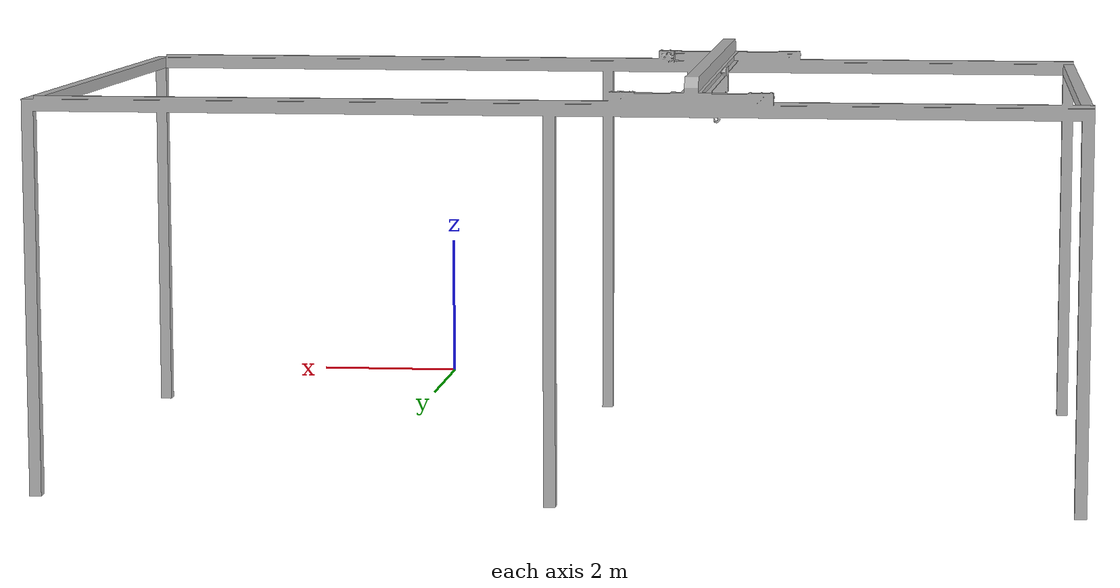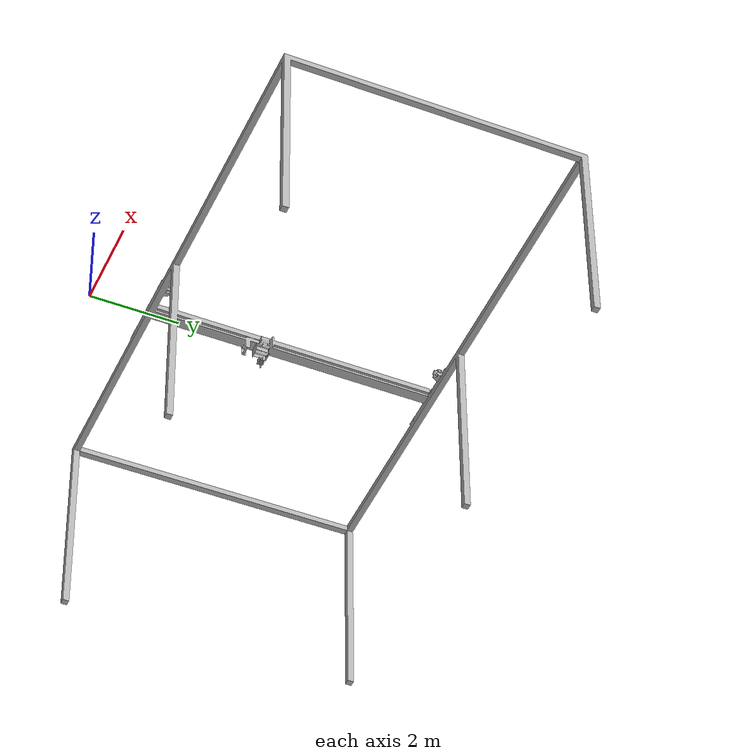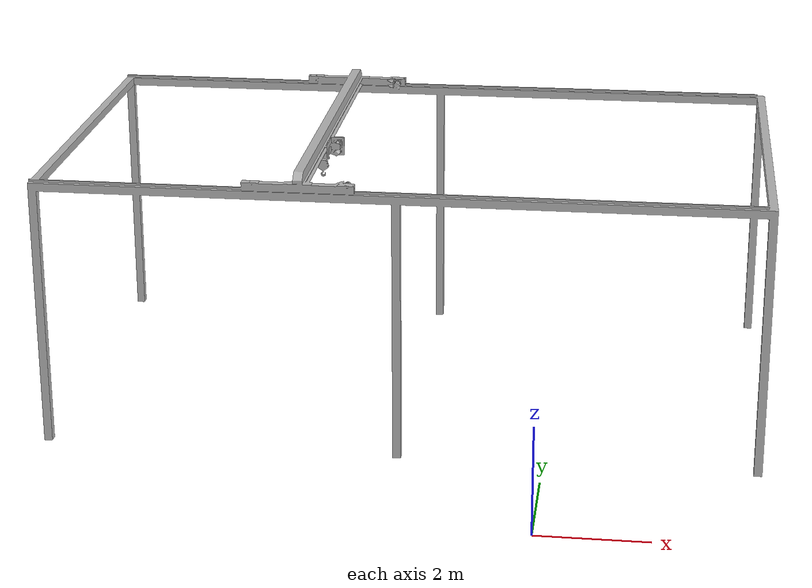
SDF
<?xml version="1.0" ?>
<sdf version="1.6">
  <model name="crane">
    <static>true</static>
    <pose frame=''>0. 0. 4.5 1.57 0. 0.</pose>
    <link name="link">
      <collision name="collision">
        <geometry>
          <mesh>
            <uri>model://crane/meshes/crane.stl</uri>
            <scale>0.001 0.001 0.001</scale>
          </mesh>
        </geometry>
      </collision>
      <visual name="visual">
        <geometry>
          <mesh>
            <uri>model://crane/meshes/crane.stl</uri>
            <scale>0.001 0.001 0.001</scale>
          </mesh>
        </geometry>
            <material>
          <script>
            <name>Gazebo/BuildingFrame</name>
            <uri>file://media/materials/scripts/gazebo.material</uri>
          </script>
        </material>
      </visual>
    </link>
  </model>
</sdf>
